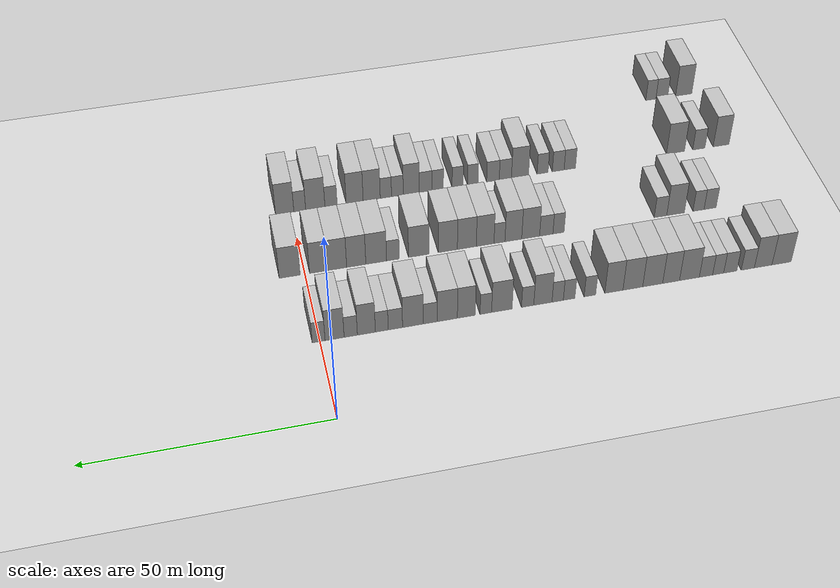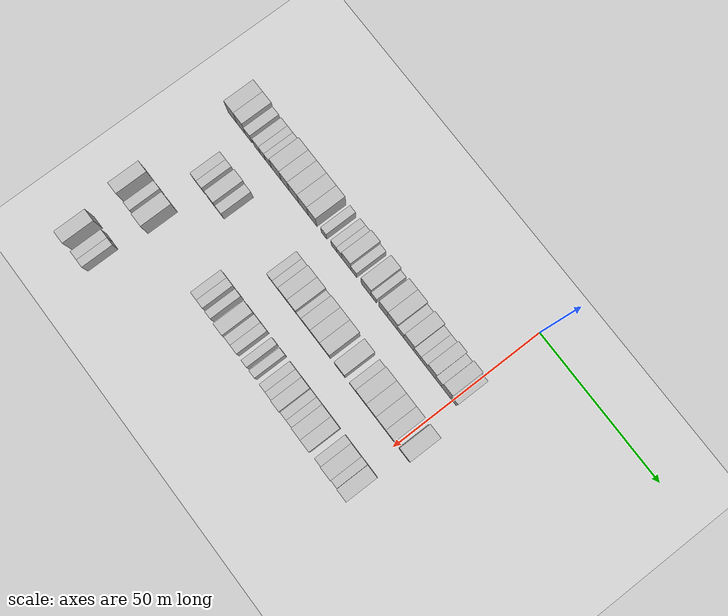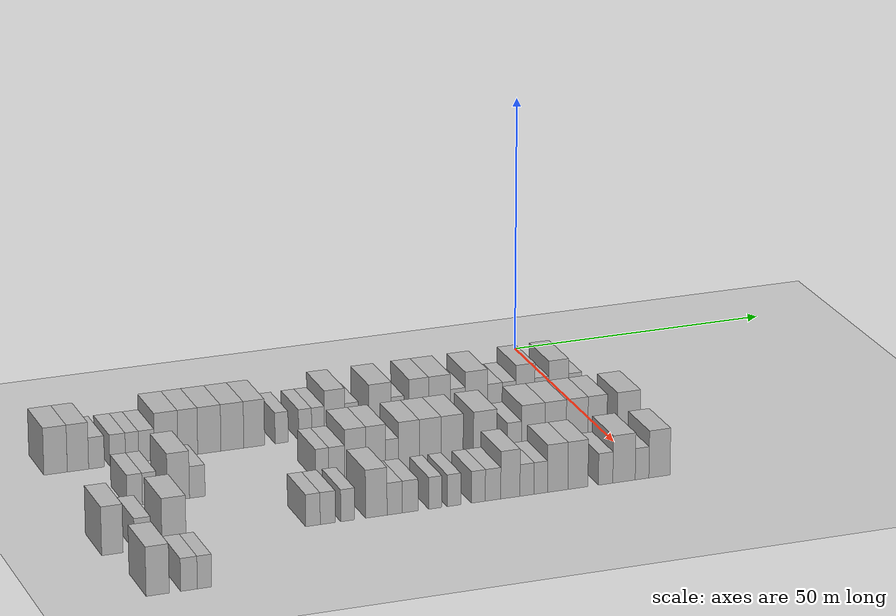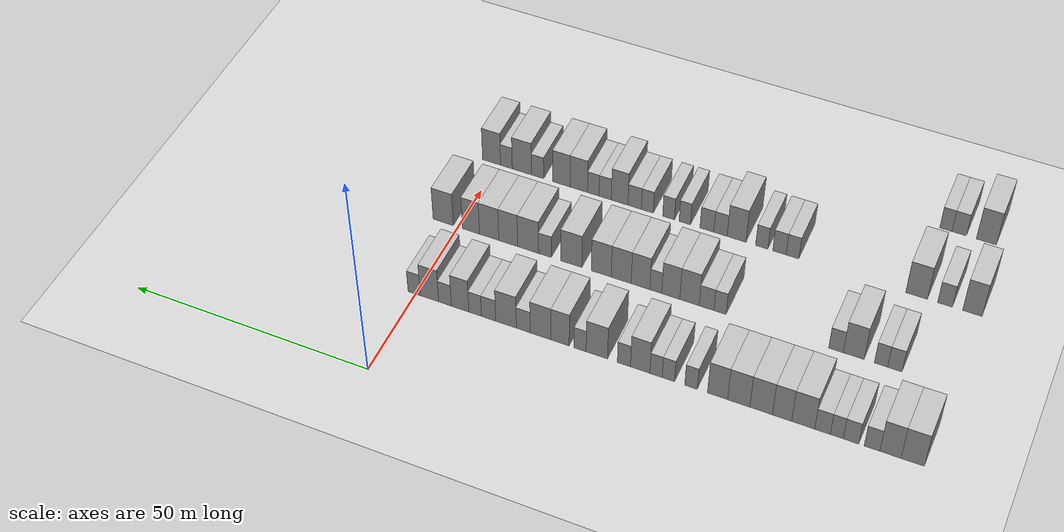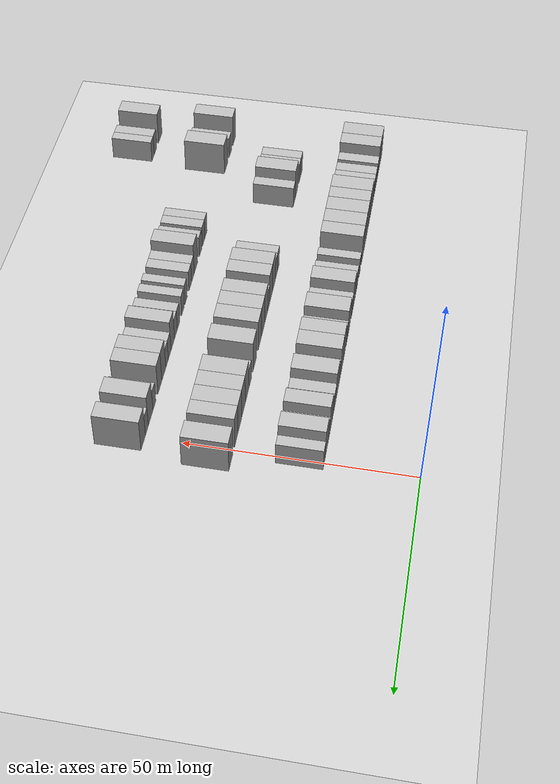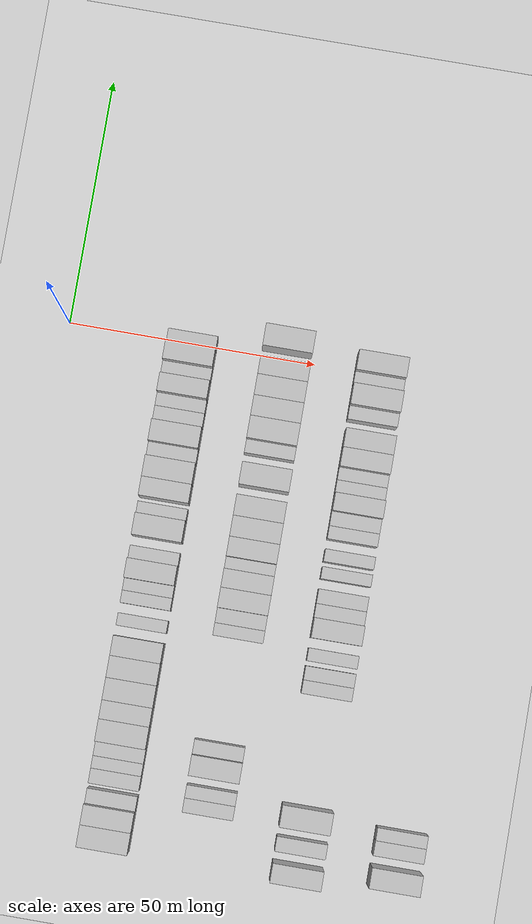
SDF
<sdf version="1.6">
 <world name="default">
  <include><name>ground_plane_1</name><uri>model://HANNAS_ground_plane</uri></include>
  <model name="building_61">
   <static>1</static>
   <pose>25.0000 -99.0919 0 0.000000 0.000000 0.000000</pose>
   <link name="link">
    <pose>0 0 4.50 0 0 0</pose>
    <collision name="collision"><geometry><box><size>10.0000 4.3256 9.0000</size></box></geometry></collision>
    <visual name="visual">
     <cast_shadows>0</cast_shadows>
     <geometry><box><size>10.0000 4.3256 9.0000</size></box></geometry>
     <material>
      <script>
       <uri>model://HANNAS_wall/materials/scripts</uri>
       <uri>model://HANNAS_wall/materials/textures</uri>
       <name>vrc/HANNAS_wall</name>
      </script>
     </material>
    </visual>
   </link>
  </model>
  <model name="building_62">
   <static>1</static>
   <pose>25.0000 -94.9548 0 0.000000 0.000000 0.000000</pose>
   <link name="link">
    <pose>0 0 4.50 0 0 0</pose>
    <collision name="collision"><geometry><box><size>10.0000 3.9485 9.0000</size></box></geometry></collision>
    <visual name="visual">
     <cast_shadows>0</cast_shadows>
     <geometry><box><size>10.0000 3.9485 9.0000</size></box></geometry>
     <material>
      <script>
       <uri>model://HANNAS_wall/materials/scripts</uri>
       <uri>model://HANNAS_wall/materials/textures</uri>
       <name>vrc/HANNAS_wall</name>
      </script>
     </material>
    </visual>
   </link>
  </model>
  <model name="building_63">
   <static>1</static>
   <pose>25.0000 -91.5138 0 0.000000 0.000000 0.000000</pose>
   <link name="link">
    <pose>0 0 3.00 0 0 0</pose>
    <collision name="collision"><geometry><box><size>10.0000 2.9335 6.0000</size></box></geometry></collision>
    <visual name="visual">
     <cast_shadows>0</cast_shadows>
     <geometry><box><size>10.0000 2.9335 6.0000</size></box></geometry>
     <material>
      <script>
       <uri>model://HANNAS_wall/materials/scripts</uri>
       <uri>model://HANNAS_wall/materials/textures</uri>
       <name>vrc/HANNAS_wall</name>
      </script>
     </material>
    </visual>
   </link>
  </model>
  <model name="building_64">
   <static>1</static>
   <pose>25.0000 -87.5771 0 0.000000 0.000000 0.000000</pose>
   <link name="link">
    <pose>0 0 3.00 0 0 0</pose>
    <collision name="collision"><geometry><box><size>10.0000 2.9399 6.0000</size></box></geometry></collision>
    <visual name="visual">
     <cast_shadows>0</cast_shadows>
     <geometry><box><size>10.0000 2.9399 6.0000</size></box></geometry>
     <material>
      <script>
       <uri>model://HANNAS_wall/materials/scripts</uri>
       <uri>model://HANNAS_wall/materials/textures</uri>
       <name>vrc/HANNAS_wall</name>
      </script>
     </material>
    </visual>
   </link>
  </model>
  <model name="building_65">
   <static>1</static>
   <pose>25.0000 -84.8800 0 0.000000 0.000000 0.000000</pose>
   <link name="link">
    <pose>0 0 3.00 0 0 0</pose>
    <collision name="collision"><geometry><box><size>10.0000 2.4543 6.0000</size></box></geometry></collision>
    <visual name="visual">
     <cast_shadows>0</cast_shadows>
     <geometry><box><size>10.0000 2.4543 6.0000</size></box></geometry>
     <material>
      <script>
       <uri>model://HANNAS_wall/materials/scripts</uri>
       <uri>model://HANNAS_wall/materials/textures</uri>
       <name>vrc/HANNAS_wall</name>
      </script>
     </material>
    </visual>
   </link>
  </model>
  <model name="building_66">
   <static>1</static>
   <pose>25.0000 -82.1757 0 0.000000 0.000000 0.000000</pose>
   <link name="link">
    <pose>0 0 3.00 0 0 0</pose>
    <collision name="collision"><geometry><box><size>10.0000 2.9542 6.0000</size></box></geometry></collision>
    <visual name="visual">
     <cast_shadows>0</cast_shadows>
     <geometry><box><size>10.0000 2.9542 6.0000</size></box></geometry>
     <material>
      <script>
       <uri>model://HANNAS_wall/materials/scripts</uri>
       <uri>model://HANNAS_wall/materials/textures</uri>
       <name>vrc/HANNAS_wall</name>
      </script>
     </material>
    </visual>
   </link>
  </model>
  <model name="building_67">
   <static>1</static>
   <pose>25.0000 -78.5030 0 0.000000 0.000000 0.000000</pose>
   <link name="link">
    <pose>0 0 4.50 0 0 0</pose>
    <collision name="collision"><geometry><box><size>10.0000 4.3913 9.0000</size></box></geometry></collision>
    <visual name="visual">
     <cast_shadows>0</cast_shadows>
     <geometry><box><size>10.0000 4.3913 9.0000</size></box></geometry>
     <material>
      <script>
       <uri>model://HANNAS_wall/materials/scripts</uri>
       <uri>model://HANNAS_wall/materials/textures</uri>
       <name>vrc/HANNAS_wall</name>
      </script>
     </material>
    </visual>
   </link>
  </model>
  <model name="building_68">
   <static>1</static>
   <pose>25.0000 -74.4544 0 0.000000 0.000000 0.000000</pose>
   <link name="link">
    <pose>0 0 4.50 0 0 0</pose>
    <collision name="collision"><geometry><box><size>10.0000 3.7057 9.0000</size></box></geometry></collision>
    <visual name="visual">
     <cast_shadows>0</cast_shadows>
     <geometry><box><size>10.0000 3.7057 9.0000</size></box></geometry>
     <material>
      <script>
       <uri>model://HANNAS_wall/materials/scripts</uri>
       <uri>model://HANNAS_wall/materials/textures</uri>
       <name>vrc/HANNAS_wall</name>
      </script>
     </material>
    </visual>
   </link>
  </model>
  <model name="building_69">
   <static>1</static>
   <pose>25.0000 -70.4099 0 0.000000 0.000000 0.000000</pose>
   <link name="link">
    <pose>0 0 4.50 0 0 0</pose>
    <collision name="collision"><geometry><box><size>10.0000 4.3834 9.0000</size></box></geometry></collision>
    <visual name="visual">
     <cast_shadows>0</cast_shadows>
     <geometry><box><size>10.0000 4.3834 9.0000</size></box></geometry>
     <material>
      <script>
       <uri>model://HANNAS_wall/materials/scripts</uri>
       <uri>model://HANNAS_wall/materials/textures</uri>
       <name>vrc/HANNAS_wall</name>
      </script>
     </material>
    </visual>
   </link>
  </model>
  <model name="building_70">
   <static>1</static>
   <pose>25.0000 -66.0621 0 0.000000 0.000000 0.000000</pose>
   <link name="link">
    <pose>0 0 4.50 0 0 0</pose>
    <collision name="collision"><geometry><box><size>10.0000 4.3121 9.0000</size></box></geometry></collision>
    <visual name="visual">
     <cast_shadows>0</cast_shadows>
     <geometry><box><size>10.0000 4.3121 9.0000</size></box></geometry>
     <material>
      <script>
       <uri>model://HANNAS_wall/materials/scripts</uri>
       <uri>model://HANNAS_wall/materials/textures</uri>
       <name>vrc/HANNAS_wall</name>
      </script>
     </material>
    </visual>
   </link>
  </model>
  <model name="building_71">
   <static>1</static>
   <pose>25.0000 -61.9349 0 0.000000 0.000000 0.000000</pose>
   <link name="link">
    <pose>0 0 4.50 0 0 0</pose>
    <collision name="collision"><geometry><box><size>10.0000 3.9423 9.0000</size></box></geometry></collision>
    <visual name="visual">
     <cast_shadows>0</cast_shadows>
     <geometry><box><size>10.0000 3.9423 9.0000</size></box></geometry>
     <material>
      <script>
       <uri>model://HANNAS_wall/materials/scripts</uri>
       <uri>model://HANNAS_wall/materials/textures</uri>
       <name>vrc/HANNAS_wall</name>
      </script>
     </material>
    </visual>
   </link>
  </model>
  <model name="building_72">
   <static>1</static>
   <pose>25.0000 -56.7172 0 0.000000 0.000000 0.000000</pose>
   <link name="link">
    <pose>0 0 3.00 0 0 0</pose>
    <collision name="collision"><geometry><box><size>10.0000 2.4931 6.0000</size></box></geometry></collision>
    <visual name="visual">
     <cast_shadows>0</cast_shadows>
     <geometry><box><size>10.0000 2.4931 6.0000</size></box></geometry>
     <material>
      <script>
       <uri>model://HANNAS_wall/materials/scripts</uri>
       <uri>model://HANNAS_wall/materials/textures</uri>
       <name>vrc/HANNAS_wall</name>
      </script>
     </material>
    </visual>
   </link>
  </model>
  <model name="building_73">
   <static>1</static>
   <pose>25.0000 -52.2281 0 0.000000 0.000000 0.000000</pose>
   <link name="link">
    <pose>0 0 3.00 0 0 0</pose>
    <collision name="collision"><geometry><box><size>10.0000 2.4852 6.0000</size></box></geometry></collision>
    <visual name="visual">
     <cast_shadows>0</cast_shadows>
     <geometry><box><size>10.0000 2.4852 6.0000</size></box></geometry>
     <material>
      <script>
       <uri>model://HANNAS_wall/materials/scripts</uri>
       <uri>model://HANNAS_wall/materials/textures</uri>
       <name>vrc/HANNAS_wall</name>
      </script>
     </material>
    </visual>
   </link>
  </model>
  <model name="building_74">
   <static>1</static>
   <pose>25.0000 -49.7633 0 0.000000 0.000000 0.000000</pose>
   <link name="link">
    <pose>0 0 3.00 0 0 0</pose>
    <collision name="collision"><geometry><box><size>10.0000 2.4444 6.0000</size></box></geometry></collision>
    <visual name="visual">
     <cast_shadows>0</cast_shadows>
     <geometry><box><size>10.0000 2.4444 6.0000</size></box></geometry>
     <material>
      <script>
       <uri>model://HANNAS_wall/materials/scripts</uri>
       <uri>model://HANNAS_wall/materials/textures</uri>
       <name>vrc/HANNAS_wall</name>
      </script>
     </material>
    </visual>
   </link>
  </model>
  <model name="building_75">
   <static>1</static>
   <pose>25.0000 -46.5911 0 0.000000 0.000000 0.000000</pose>
   <link name="link">
    <pose>0 0 4.50 0 0 0</pose>
    <collision name="collision"><geometry><box><size>10.0000 3.9000 9.0000</size></box></geometry></collision>
    <visual name="visual">
     <cast_shadows>0</cast_shadows>
     <geometry><box><size>10.0000 3.9000 9.0000</size></box></geometry>
     <material>
      <script>
       <uri>model://HANNAS_wall/materials/scripts</uri>
       <uri>model://HANNAS_wall/materials/textures</uri>
       <name>vrc/HANNAS_wall</name>
      </script>
     </material>
    </visual>
   </link>
  </model>
  <model name="building_76">
   <static>1</static>
   <pose>25.0000 -43.3283 0 0.000000 0.000000 0.000000</pose>
   <link name="link">
    <pose>0 0 3.00 0 0 0</pose>
    <collision name="collision"><geometry><box><size>10.0000 2.6255 6.0000</size></box></geometry></collision>
    <visual name="visual">
     <cast_shadows>0</cast_shadows>
     <geometry><box><size>10.0000 2.6255 6.0000</size></box></geometry>
     <material>
      <script>
       <uri>model://HANNAS_wall/materials/scripts</uri>
       <uri>model://HANNAS_wall/materials/textures</uri>
       <name>vrc/HANNAS_wall</name>
      </script>
     </material>
    </visual>
   </link>
  </model>
  <model name="building_77">
   <static>1</static>
   <pose>25.0000 -37.8371 0 0.000000 0.000000 0.000000</pose>
   <link name="link">
    <pose>0 0 4.50 0 0 0</pose>
    <collision name="collision"><geometry><box><size>10.0000 4.3570 9.0000</size></box></geometry></collision>
    <visual name="visual">
     <cast_shadows>0</cast_shadows>
     <geometry><box><size>10.0000 4.3570 9.0000</size></box></geometry>
     <material>
      <script>
       <uri>model://HANNAS_wall/materials/scripts</uri>
       <uri>model://HANNAS_wall/materials/textures</uri>
       <name>vrc/HANNAS_wall</name>
      </script>
     </material>
    </visual>
   </link>
  </model>
  <model name="building_78">
   <static>1</static>
   <pose>25.0000 -34.4365 0 0.000000 0.000000 0.000000</pose>
   <link name="link">
    <pose>0 0 3.00 0 0 0</pose>
    <collision name="collision"><geometry><box><size>10.0000 2.4443 6.0000</size></box></geometry></collision>
    <visual name="visual">
     <cast_shadows>0</cast_shadows>
     <geometry><box><size>10.0000 2.4443 6.0000</size></box></geometry>
     <material>
      <script>
       <uri>model://HANNAS_wall/materials/scripts</uri>
       <uri>model://HANNAS_wall/materials/textures</uri>
       <name>vrc/HANNAS_wall</name>
      </script>
     </material>
    </visual>
   </link>
  </model>
  <model name="building_79">
   <static>1</static>
   <pose>25.0000 -30.3261 0 0.000000 0.000000 0.000000</pose>
   <link name="link">
    <pose>0 0 4.50 0 0 0</pose>
    <collision name="collision"><geometry><box><size>10.0000 3.7765 9.0000</size></box></geometry></collision>
    <visual name="visual">
     <cast_shadows>0</cast_shadows>
     <geometry><box><size>10.0000 3.7765 9.0000</size></box></geometry>
     <material>
      <script>
       <uri>model://HANNAS_wall/materials/scripts</uri>
       <uri>model://HANNAS_wall/materials/textures</uri>
       <name>vrc/HANNAS_wall</name>
      </script>
     </material>
    </visual>
   </link>
  </model>
  <model name="building_80">
   <static>1</static>
   <pose>25.0000 -26.3080 0 0.000000 0.000000 0.000000</pose>
   <link name="link">
    <pose>0 0 4.50 0 0 0</pose>
    <collision name="collision"><geometry><box><size>10.0000 4.2597 9.0000</size></box></geometry></collision>
    <visual name="visual">
     <cast_shadows>0</cast_shadows>
     <geometry><box><size>10.0000 4.2597 9.0000</size></box></geometry>
     <material>
      <script>
       <uri>model://HANNAS_wall/materials/scripts</uri>
       <uri>model://HANNAS_wall/materials/textures</uri>
       <name>vrc/HANNAS_wall</name>
      </script>
     </material>
    </visual>
   </link>
  </model>
  <model name="building_81">
   <static>1</static>
   <pose>25.0000 -22.7235 0 0.000000 0.000000 0.000000</pose>
   <link name="link">
    <pose>0 0 3.00 0 0 0</pose>
    <collision name="collision"><geometry><box><size>10.0000 2.9092 6.0000</size></box></geometry></collision>
    <visual name="visual">
     <cast_shadows>0</cast_shadows>
     <geometry><box><size>10.0000 2.9092 6.0000</size></box></geometry>
     <material>
      <script>
       <uri>model://HANNAS_wall/materials/scripts</uri>
       <uri>model://HANNAS_wall/materials/textures</uri>
       <name>vrc/HANNAS_wall</name>
      </script>
     </material>
    </visual>
   </link>
  </model>
  <model name="building_82">
   <static>1</static>
   <pose>25.0000 -19.1239 0 0.000000 0.000000 0.000000</pose>
   <link name="link">
    <pose>0 0 4.50 0 0 0</pose>
    <collision name="collision"><geometry><box><size>10.0000 4.2902 9.0000</size></box></geometry></collision>
    <visual name="visual">
     <cast_shadows>0</cast_shadows>
     <geometry><box><size>10.0000 4.2902 9.0000</size></box></geometry>
     <material>
      <script>
       <uri>model://HANNAS_wall/materials/scripts</uri>
       <uri>model://HANNAS_wall/materials/textures</uri>
       <name>vrc/HANNAS_wall</name>
      </script>
     </material>
    </visual>
   </link>
  </model>
  <model name="building_83">
   <static>1</static>
   <pose>25.0000 -15.4917 0 0.000000 0.000000 0.000000</pose>
   <link name="link">
    <pose>0 0 3.00 0 0 0</pose>
    <collision name="collision"><geometry><box><size>10.0000 2.9742 6.0000</size></box></geometry></collision>
    <visual name="visual">
     <cast_shadows>0</cast_shadows>
     <geometry><box><size>10.0000 2.9742 6.0000</size></box></geometry>
     <material>
      <script>
       <uri>model://HANNAS_wall/materials/scripts</uri>
       <uri>model://HANNAS_wall/materials/textures</uri>
       <name>vrc/HANNAS_wall</name>
      </script>
     </material>
    </visual>
   </link>
  </model>
  <model name="building_84">
   <static>1</static>
   <pose>25.0000 -12.6764 0 0.000000 0.000000 0.000000</pose>
   <link name="link">
    <pose>0 0 3.00 0 0 0</pose>
    <collision name="collision"><geometry><box><size>10.0000 2.6565 6.0000</size></box></geometry></collision>
    <visual name="visual">
     <cast_shadows>0</cast_shadows>
     <geometry><box><size>10.0000 2.6565 6.0000</size></box></geometry>
     <material>
      <script>
       <uri>model://HANNAS_wall/materials/scripts</uri>
       <uri>model://HANNAS_wall/materials/textures</uri>
       <name>vrc/HANNAS_wall</name>
      </script>
     </material>
    </visual>
   </link>
  </model>
  <model name="building_85">
   <static>1</static>
   <pose>25.0000 -9.4962 0 0.000000 0.000000 0.000000</pose>
   <link name="link">
    <pose>0 0 4.50 0 0 0</pose>
    <collision name="collision"><geometry><box><size>10.0000 3.7039 9.0000</size></box></geometry></collision>
    <visual name="visual">
     <cast_shadows>0</cast_shadows>
     <geometry><box><size>10.0000 3.7039 9.0000</size></box></geometry>
     <material>
      <script>
       <uri>model://HANNAS_wall/materials/scripts</uri>
       <uri>model://HANNAS_wall/materials/textures</uri>
       <name>vrc/HANNAS_wall</name>
      </script>
     </material>
    </visual>
   </link>
  </model>
  <model name="building_86">
   <static>1</static>
   <pose>25.0000 -6.2810 0 0.000000 0.000000 0.000000</pose>
   <link name="link">
    <pose>0 0 3.00 0 0 0</pose>
    <collision name="collision"><geometry><box><size>10.0000 2.7266 6.0000</size></box></geometry></collision>
    <visual name="visual">
     <cast_shadows>0</cast_shadows>
     <geometry><box><size>10.0000 2.7266 6.0000</size></box></geometry>
     <material>
      <script>
       <uri>model://HANNAS_wall/materials/scripts</uri>
       <uri>model://HANNAS_wall/materials/textures</uri>
       <name>vrc/HANNAS_wall</name>
      </script>
     </material>
    </visual>
   </link>
  </model>
  <model name="building_87">
   <static>1</static>
   <pose>25.0000 -2.9673 0 0.000000 0.000000 0.000000</pose>
   <link name="link">
    <pose>0 0 4.50 0 0 0</pose>
    <collision name="collision"><geometry><box><size>10.0000 3.9007 9.0000</size></box></geometry></collision>
    <visual name="visual">
     <cast_shadows>0</cast_shadows>
     <geometry><box><size>10.0000 3.9007 9.0000</size></box></geometry>
     <material>
      <script>
       <uri>model://HANNAS_wall/materials/scripts</uri>
       <uri>model://HANNAS_wall/materials/textures</uri>
       <name>vrc/HANNAS_wall</name>
      </script>
     </material>
    </visual>
   </link>
  </model>
  <model name="building_88">
   <static>1</static>
   <pose>25.0000 0.2975 0 0.000000 0.000000 0.000000</pose>
   <link name="link">
    <pose>0 0 3.00 0 0 0</pose>
    <collision name="collision"><geometry><box><size>10.0000 2.6289 6.0000</size></box></geometry></collision>
    <visual name="visual">
     <cast_shadows>0</cast_shadows>
     <geometry><box><size>10.0000 2.6289 6.0000</size></box></geometry>
     <material>
      <script>
       <uri>model://HANNAS_wall/materials/scripts</uri>
       <uri>model://HANNAS_wall/materials/textures</uri>
       <name>vrc/HANNAS_wall</name>
      </script>
     </material>
    </visual>
   </link>
  </model>
  <model name="building_220">
   <static>1</static>
   <pose>44.0000 -90.0922 0 0.000000 0.000000 0.000000</pose>
   <link name="link">
    <pose>0 0 3.00 0 0 0</pose>
    <collision name="collision"><geometry><box><size>10.0000 2.7992 6.0000</size></box></geometry></collision>
    <visual name="visual">
     <cast_shadows>0</cast_shadows>
     <geometry><box><size>10.0000 2.7992 6.0000</size></box></geometry>
     <material>
      <script>
       <uri>model://HANNAS_wall/materials/scripts</uri>
       <uri>model://HANNAS_wall/materials/textures</uri>
       <name>vrc/HANNAS_wall</name>
      </script>
     </material>
    </visual>
   </link>
  </model>
  <model name="building_221">
   <static>1</static>
   <pose>44.0000 -87.4072 0 0.000000 0.000000 0.000000</pose>
   <link name="link">
    <pose>0 0 3.00 0 0 0</pose>
    <collision name="collision"><geometry><box><size>10.0000 2.5708 6.0000</size></box></geometry></collision>
    <visual name="visual">
     <cast_shadows>0</cast_shadows>
     <geometry><box><size>10.0000 2.5708 6.0000</size></box></geometry>
     <material>
      <script>
       <uri>model://HANNAS_wall/materials/scripts</uri>
       <uri>model://HANNAS_wall/materials/textures</uri>
       <name>vrc/HANNAS_wall</name>
      </script>
     </material>
    </visual>
   </link>
  </model>
  <model name="building_222">
   <static>1</static>
   <pose>44.0000 -82.0931 0 0.000000 0.000000 0.000000</pose>
   <link name="link">
    <pose>0 0 4.50 0 0 0</pose>
    <collision name="collision"><geometry><box><size>10.0000 4.0575 9.0000</size></box></geometry></collision>
    <visual name="visual">
     <cast_shadows>0</cast_shadows>
     <geometry><box><size>10.0000 4.0575 9.0000</size></box></geometry>
     <material>
      <script>
       <uri>model://HANNAS_wall/materials/scripts</uri>
       <uri>model://HANNAS_wall/materials/textures</uri>
       <name>vrc/HANNAS_wall</name>
      </script>
     </material>
    </visual>
   </link>
  </model>
  <model name="building_223">
   <static>1</static>
   <pose>44.0000 -78.6224 0 0.000000 0.000000 0.000000</pose>
   <link name="link">
    <pose>0 0 3.00 0 0 0</pose>
    <collision name="collision"><geometry><box><size>10.0000 2.8838 6.0000</size></box></geometry></collision>
    <visual name="visual">
     <cast_shadows>0</cast_shadows>
     <geometry><box><size>10.0000 2.8838 6.0000</size></box></geometry>
     <material>
      <script>
       <uri>model://HANNAS_wall/materials/scripts</uri>
       <uri>model://HANNAS_wall/materials/textures</uri>
       <name>vrc/HANNAS_wall</name>
      </script>
     </material>
    </visual>
   </link>
  </model>
  <model name="building_224">
   <static>1</static>
   <pose>44.0000 -55.4312 0 0.000000 0.000000 0.000000</pose>
   <link name="link">
    <pose>0 0 3.00 0 0 0</pose>
    <collision name="collision"><geometry><box><size>10.0000 2.4996 6.0000</size></box></geometry></collision>
    <visual name="visual">
     <cast_shadows>0</cast_shadows>
     <geometry><box><size>10.0000 2.4996 6.0000</size></box></geometry>
     <material>
      <script>
       <uri>model://HANNAS_wall/materials/scripts</uri>
       <uri>model://HANNAS_wall/materials/textures</uri>
       <name>vrc/HANNAS_wall</name>
      </script>
     </material>
    </visual>
   </link>
  </model>
  <model name="building_225">
   <static>1</static>
   <pose>44.0000 -52.6894 0 0.000000 0.000000 0.000000</pose>
   <link name="link">
    <pose>0 0 3.00 0 0 0</pose>
    <collision name="collision"><geometry><box><size>10.0000 2.9840 6.0000</size></box></geometry></collision>
    <visual name="visual">
     <cast_shadows>0</cast_shadows>
     <geometry><box><size>10.0000 2.9840 6.0000</size></box></geometry>
     <material>
      <script>
       <uri>model://HANNAS_wall/materials/scripts</uri>
       <uri>model://HANNAS_wall/materials/textures</uri>
       <name>vrc/HANNAS_wall</name>
      </script>
     </material>
    </visual>
   </link>
  </model>
  <model name="building_226">
   <static>1</static>
   <pose>44.0000 -49.1990 0 0.000000 0.000000 0.000000</pose>
   <link name="link">
    <pose>0 0 4.50 0 0 0</pose>
    <collision name="collision"><geometry><box><size>10.0000 3.9967 9.0000</size></box></geometry></collision>
    <visual name="visual">
     <cast_shadows>0</cast_shadows>
     <geometry><box><size>10.0000 3.9967 9.0000</size></box></geometry>
     <material>
      <script>
       <uri>model://HANNAS_wall/materials/scripts</uri>
       <uri>model://HANNAS_wall/materials/textures</uri>
       <name>vrc/HANNAS_wall</name>
      </script>
     </material>
    </visual>
   </link>
  </model>
  <model name="building_227">
   <static>1</static>
   <pose>44.0000 -45.3298 0 0.000000 0.000000 0.000000</pose>
   <link name="link">
    <pose>0 0 4.50 0 0 0</pose>
    <collision name="collision"><geometry><box><size>10.0000 3.7417 9.0000</size></box></geometry></collision>
    <visual name="visual">
     <cast_shadows>0</cast_shadows>
     <geometry><box><size>10.0000 3.7417 9.0000</size></box></geometry>
     <material>
      <script>
       <uri>model://HANNAS_wall/materials/scripts</uri>
       <uri>model://HANNAS_wall/materials/textures</uri>
       <name>vrc/HANNAS_wall</name>
      </script>
     </material>
    </visual>
   </link>
  </model>
  <model name="building_228">
   <static>1</static>
   <pose>44.0000 -42.2456 0 0.000000 0.000000 0.000000</pose>
   <link name="link">
    <pose>0 0 3.00 0 0 0</pose>
    <collision name="collision"><geometry><box><size>10.0000 2.4268 6.0000</size></box></geometry></collision>
    <visual name="visual">
     <cast_shadows>0</cast_shadows>
     <geometry><box><size>10.0000 2.4268 6.0000</size></box></geometry>
     <material>
      <script>
       <uri>model://HANNAS_wall/materials/scripts</uri>
       <uri>model://HANNAS_wall/materials/textures</uri>
       <name>vrc/HANNAS_wall</name>
      </script>
     </material>
    </visual>
   </link>
  </model>
  <model name="building_229">
   <static>1</static>
   <pose>44.0000 -39.0717 0 0.000000 0.000000 0.000000</pose>
   <link name="link">
    <pose>0 0 4.50 0 0 0</pose>
    <collision name="collision"><geometry><box><size>10.0000 3.9209 9.0000</size></box></geometry></collision>
    <visual name="visual">
     <cast_shadows>0</cast_shadows>
     <geometry><box><size>10.0000 3.9209 9.0000</size></box></geometry>
     <material>
      <script>
       <uri>model://HANNAS_wall/materials/scripts</uri>
       <uri>model://HANNAS_wall/materials/textures</uri>
       <name>vrc/HANNAS_wall</name>
      </script>
     </material>
    </visual>
   </link>
  </model>
  <model name="building_230">
   <static>1</static>
   <pose>44.0000 -35.0303 0 0.000000 0.000000 0.000000</pose>
   <link name="link">
    <pose>0 0 4.50 0 0 0</pose>
    <collision name="collision"><geometry><box><size>10.0000 4.1619 9.0000</size></box></geometry></collision>
    <visual name="visual">
     <cast_shadows>0</cast_shadows>
     <geometry><box><size>10.0000 4.1619 9.0000</size></box></geometry>
     <material>
      <script>
       <uri>model://HANNAS_wall/materials/scripts</uri>
       <uri>model://HANNAS_wall/materials/textures</uri>
       <name>vrc/HANNAS_wall</name>
      </script>
     </material>
    </visual>
   </link>
  </model>
  <model name="building_231">
   <static>1</static>
   <pose>44.0000 -30.8508 0 0.000000 0.000000 0.000000</pose>
   <link name="link">
    <pose>0 0 4.50 0 0 0</pose>
    <collision name="collision"><geometry><box><size>10.0000 4.1972 9.0000</size></box></geometry></collision>
    <visual name="visual">
     <cast_shadows>0</cast_shadows>
     <geometry><box><size>10.0000 4.1972 9.0000</size></box></geometry>
     <material>
      <script>
       <uri>model://HANNAS_wall/materials/scripts</uri>
       <uri>model://HANNAS_wall/materials/textures</uri>
       <name>vrc/HANNAS_wall</name>
      </script>
     </material>
    </visual>
   </link>
  </model>
  <model name="building_232">
   <static>1</static>
   <pose>44.0000 -24.5054 0 0.000000 0.000000 0.000000</pose>
   <link name="link">
    <pose>0 0 4.50 0 0 0</pose>
    <collision name="collision"><geometry><box><size>10.0000 4.4937 9.0000</size></box></geometry></collision>
    <visual name="visual">
     <cast_shadows>0</cast_shadows>
     <geometry><box><size>10.0000 4.4937 9.0000</size></box></geometry>
     <material>
      <script>
       <uri>model://HANNAS_wall/materials/scripts</uri>
       <uri>model://HANNAS_wall/materials/textures</uri>
       <name>vrc/HANNAS_wall</name>
      </script>
     </material>
    </visual>
   </link>
  </model>
  <model name="building_233">
   <static>1</static>
   <pose>44.0000 -18.8831 0 0.000000 0.000000 0.000000</pose>
   <link name="link">
    <pose>0 0 3.00 0 0 0</pose>
    <collision name="collision"><geometry><box><size>10.0000 2.7508 6.0000</size></box></geometry></collision>
    <visual name="visual">
     <cast_shadows>0</cast_shadows>
     <geometry><box><size>10.0000 2.7508 6.0000</size></box></geometry>
     <material>
      <script>
       <uri>model://HANNAS_wall/materials/scripts</uri>
       <uri>model://HANNAS_wall/materials/textures</uri>
       <name>vrc/HANNAS_wall</name>
      </script>
     </material>
    </visual>
   </link>
  </model>
  <model name="building_234">
   <static>1</static>
   <pose>44.0000 -15.2633 0 0.000000 0.000000 0.000000</pose>
   <link name="link">
    <pose>0 0 4.50 0 0 0</pose>
    <collision name="collision"><geometry><box><size>10.0000 4.4888 9.0000</size></box></geometry></collision>
    <visual name="visual">
     <cast_shadows>0</cast_shadows>
     <geometry><box><size>10.0000 4.4888 9.0000</size></box></geometry>
     <material>
      <script>
       <uri>model://HANNAS_wall/materials/scripts</uri>
       <uri>model://HANNAS_wall/materials/textures</uri>
       <name>vrc/HANNAS_wall</name>
      </script>
     </material>
    </visual>
   </link>
  </model>
  <model name="building_235">
   <static>1</static>
   <pose>44.0000 -10.9596 0 0.000000 0.000000 0.000000</pose>
   <link name="link">
    <pose>0 0 4.50 0 0 0</pose>
    <collision name="collision"><geometry><box><size>10.0000 4.1185 9.0000</size></box></geometry></collision>
    <visual name="visual">
     <cast_shadows>0</cast_shadows>
     <geometry><box><size>10.0000 4.1185 9.0000</size></box></geometry>
     <material>
      <script>
       <uri>model://HANNAS_wall/materials/scripts</uri>
       <uri>model://HANNAS_wall/materials/textures</uri>
       <name>vrc/HANNAS_wall</name>
      </script>
     </material>
    </visual>
   </link>
  </model>
  <model name="building_236">
   <static>1</static>
   <pose>44.0000 -6.7970 0 0.000000 0.000000 0.000000</pose>
   <link name="link">
    <pose>0 0 4.50 0 0 0</pose>
    <collision name="collision"><geometry><box><size>10.0000 4.2067 9.0000</size></box></geometry></collision>
    <visual name="visual">
     <cast_shadows>0</cast_shadows>
     <geometry><box><size>10.0000 4.2067 9.0000</size></box></geometry>
     <material>
      <script>
       <uri>model://HANNAS_wall/materials/scripts</uri>
       <uri>model://HANNAS_wall/materials/textures</uri>
       <name>vrc/HANNAS_wall</name>
      </script>
     </material>
    </visual>
   </link>
  </model>
  <model name="building_237">
   <static>1</static>
   <pose>44.0000 -2.8311 0 0.000000 0.000000 0.000000</pose>
   <link name="link">
    <pose>0 0 4.50 0 0 0</pose>
    <collision name="collision"><geometry><box><size>10.0000 3.7250 9.0000</size></box></geometry></collision>
    <visual name="visual">
     <cast_shadows>0</cast_shadows>
     <geometry><box><size>10.0000 3.7250 9.0000</size></box></geometry>
     <material>
      <script>
       <uri>model://HANNAS_wall/materials/scripts</uri>
       <uri>model://HANNAS_wall/materials/textures</uri>
       <name>vrc/HANNAS_wall</name>
      </script>
     </material>
    </visual>
   </link>
  </model>
  <model name="building_238">
   <static>1</static>
   <pose>44.0000 3.2646 0 0.000000 0.000000 0.000000</pose>
   <link name="link">
    <pose>0 0 4.50 0 0 0</pose>
    <collision name="collision"><geometry><box><size>10.0000 4.4665 9.0000</size></box></geometry></collision>
    <visual name="visual">
     <cast_shadows>0</cast_shadows>
     <geometry><box><size>10.0000 4.4665 9.0000</size></box></geometry>
     <material>
      <script>
       <uri>model://HANNAS_wall/materials/scripts</uri>
       <uri>model://HANNAS_wall/materials/textures</uri>
       <name>vrc/HANNAS_wall</name>
      </script>
     </material>
    </visual>
   </link>
  </model>
  <model name="building_392">
   <static>1</static>
   <pose>63.0000 -99.7593 0 0.000000 0.000000 0.000000</pose>
   <link name="link">
    <pose>0 0 4.50 0 0 0</pose>
    <collision name="collision"><geometry><box><size>10.0000 3.8222 9.0000</size></box></geometry></collision>
    <visual name="visual">
     <cast_shadows>0</cast_shadows>
     <geometry><box><size>10.0000 3.8222 9.0000</size></box></geometry>
     <material>
      <script>
       <uri>model://HANNAS_wall/materials/scripts</uri>
       <uri>model://HANNAS_wall/materials/textures</uri>
       <name>vrc/HANNAS_wall</name>
      </script>
     </material>
    </visual>
   </link>
  </model>
  <model name="building_393">
   <static>1</static>
   <pose>63.0000 -94.3771 0 0.000000 0.000000 0.000000</pose>
   <link name="link">
    <pose>0 0 3.00 0 0 0</pose>
    <collision name="collision"><geometry><box><size>10.0000 2.9422 6.0000</size></box></geometry></collision>
    <visual name="visual">
     <cast_shadows>0</cast_shadows>
     <geometry><box><size>10.0000 2.9422 6.0000</size></box></geometry>
     <material>
      <script>
       <uri>model://HANNAS_wall/materials/scripts</uri>
       <uri>model://HANNAS_wall/materials/textures</uri>
       <name>vrc/HANNAS_wall</name>
      </script>
     </material>
    </visual>
   </link>
  </model>
  <model name="building_394">
   <static>1</static>
   <pose>63.0000 -88.7405 0 0.000000 0.000000 0.000000</pose>
   <link name="link">
    <pose>0 0 4.50 0 0 0</pose>
    <collision name="collision"><geometry><box><size>10.0000 4.3309 9.0000</size></box></geometry></collision>
    <visual name="visual">
     <cast_shadows>0</cast_shadows>
     <geometry><box><size>10.0000 4.3309 9.0000</size></box></geometry>
     <material>
      <script>
       <uri>model://HANNAS_wall/materials/scripts</uri>
       <uri>model://HANNAS_wall/materials/textures</uri>
       <name>vrc/HANNAS_wall</name>
      </script>
     </material>
    </visual>
   </link>
  </model>
  <model name="building_395">
   <static>1</static>
   <pose>63.0000 -63.5776 0 0.000000 0.000000 0.000000</pose>
   <link name="link">
    <pose>0 0 3.00 0 0 0</pose>
    <collision name="collision"><geometry><box><size>10.0000 2.6649 6.0000</size></box></geometry></collision>
    <visual name="visual">
     <cast_shadows>0</cast_shadows>
     <geometry><box><size>10.0000 2.6649 6.0000</size></box></geometry>
     <material>
      <script>
       <uri>model://HANNAS_wall/materials/scripts</uri>
       <uri>model://HANNAS_wall/materials/textures</uri>
       <name>vrc/HANNAS_wall</name>
      </script>
     </material>
    </visual>
   </link>
  </model>
  <model name="building_396">
   <static>1</static>
   <pose>63.0000 -60.8622 0 0.000000 0.000000 0.000000</pose>
   <link name="link">
    <pose>0 0 3.00 0 0 0</pose>
    <collision name="collision"><geometry><box><size>10.0000 2.7658 6.0000</size></box></geometry></collision>
    <visual name="visual">
     <cast_shadows>0</cast_shadows>
     <geometry><box><size>10.0000 2.7658 6.0000</size></box></geometry>
     <material>
      <script>
       <uri>model://HANNAS_wall/materials/scripts</uri>
       <uri>model://HANNAS_wall/materials/textures</uri>
       <name>vrc/HANNAS_wall</name>
      </script>
     </material>
    </visual>
   </link>
  </model>
  <model name="building_397">
   <static>1</static>
   <pose>63.0000 -57.1977 0 0.000000 0.000000 0.000000</pose>
   <link name="link">
    <pose>0 0 3.00 0 0 0</pose>
    <collision name="collision"><geometry><box><size>10.0000 2.5633 6.0000</size></box></geometry></collision>
    <visual name="visual">
     <cast_shadows>0</cast_shadows>
     <geometry><box><size>10.0000 2.5633 6.0000</size></box></geometry>
     <material>
      <script>
       <uri>model://HANNAS_wall/materials/scripts</uri>
       <uri>model://HANNAS_wall/materials/textures</uri>
       <name>vrc/HANNAS_wall</name>
      </script>
     </material>
    </visual>
   </link>
  </model>
  <model name="building_398">
   <static>1</static>
   <pose>63.0000 -51.9292 0 0.000000 0.000000 0.000000</pose>
   <link name="link">
    <pose>0 0 4.50 0 0 0</pose>
    <collision name="collision"><geometry><box><size>10.0000 3.9737 9.0000</size></box></geometry></collision>
    <visual name="visual">
     <cast_shadows>0</cast_shadows>
     <geometry><box><size>10.0000 3.9737 9.0000</size></box></geometry>
     <material>
      <script>
       <uri>model://HANNAS_wall/materials/scripts</uri>
       <uri>model://HANNAS_wall/materials/textures</uri>
       <name>vrc/HANNAS_wall</name>
      </script>
     </material>
    </visual>
   </link>
  </model>
  <model name="building_399">
   <static>1</static>
   <pose>63.0000 -48.5296 0 0.000000 0.000000 0.000000</pose>
   <link name="link">
    <pose>0 0 3.00 0 0 0</pose>
    <collision name="collision"><geometry><box><size>10.0000 2.8256 6.0000</size></box></geometry></collision>
    <visual name="visual">
     <cast_shadows>0</cast_shadows>
     <geometry><box><size>10.0000 2.8256 6.0000</size></box></geometry>
     <material>
      <script>
       <uri>model://HANNAS_wall/materials/scripts</uri>
       <uri>model://HANNAS_wall/materials/textures</uri>
       <name>vrc/HANNAS_wall</name>
      </script>
     </material>
    </visual>
   </link>
  </model>
  <model name="building_400">
   <static>1</static>
   <pose>63.0000 -45.6621 0 0.000000 0.000000 0.000000</pose>
   <link name="link">
    <pose>0 0 3.00 0 0 0</pose>
    <collision name="collision"><geometry><box><size>10.0000 2.9095 6.0000</size></box></geometry></collision>
    <visual name="visual">
     <cast_shadows>0</cast_shadows>
     <geometry><box><size>10.0000 2.9095 6.0000</size></box></geometry>
     <material>
      <script>
       <uri>model://HANNAS_wall/materials/scripts</uri>
       <uri>model://HANNAS_wall/materials/textures</uri>
       <name>vrc/HANNAS_wall</name>
      </script>
     </material>
    </visual>
   </link>
  </model>
  <model name="building_401">
   <static>1</static>
   <pose>63.0000 -40.9930 0 0.000000 0.000000 0.000000</pose>
   <link name="link">
    <pose>0 0 3.00 0 0 0</pose>
    <collision name="collision"><geometry><box><size>10.0000 2.4286 6.0000</size></box></geometry></collision>
    <visual name="visual">
     <cast_shadows>0</cast_shadows>
     <geometry><box><size>10.0000 2.4286 6.0000</size></box></geometry>
     <material>
      <script>
       <uri>model://HANNAS_wall/materials/scripts</uri>
       <uri>model://HANNAS_wall/materials/textures</uri>
       <name>vrc/HANNAS_wall</name>
      </script>
     </material>
    </visual>
   </link>
  </model>
  <model name="building_402">
   <static>1</static>
   <pose>63.0000 -37.5135 0 0.000000 0.000000 0.000000</pose>
   <link name="link">
    <pose>0 0 3.00 0 0 0</pose>
    <collision name="collision"><geometry><box><size>10.0000 2.5304 6.0000</size></box></geometry></collision>
    <visual name="visual">
     <cast_shadows>0</cast_shadows>
     <geometry><box><size>10.0000 2.5304 6.0000</size></box></geometry>
     <material>
      <script>
       <uri>model://HANNAS_wall/materials/scripts</uri>
       <uri>model://HANNAS_wall/materials/textures</uri>
       <name>vrc/HANNAS_wall</name>
      </script>
     </material>
    </visual>
   </link>
  </model>
  <model name="building_403">
   <static>1</static>
   <pose>63.0000 -32.9405 0 0.000000 0.000000 0.000000</pose>
   <link name="link">
    <pose>0 0 3.00 0 0 0</pose>
    <collision name="collision"><geometry><box><size>10.0000 2.6156 6.0000</size></box></geometry></collision>
    <visual name="visual">
     <cast_shadows>0</cast_shadows>
     <geometry><box><size>10.0000 2.6156 6.0000</size></box></geometry>
     <material>
      <script>
       <uri>model://HANNAS_wall/materials/scripts</uri>
       <uri>model://HANNAS_wall/materials/textures</uri>
       <name>vrc/HANNAS_wall</name>
      </script>
     </material>
    </visual>
   </link>
  </model>
  <model name="building_404">
   <static>1</static>
   <pose>63.0000 -30.1827 0 0.000000 0.000000 0.000000</pose>
   <link name="link">
    <pose>0 0 3.00 0 0 0</pose>
    <collision name="collision"><geometry><box><size>10.0000 2.9001 6.0000</size></box></geometry></collision>
    <visual name="visual">
     <cast_shadows>0</cast_shadows>
     <geometry><box><size>10.0000 2.9001 6.0000</size></box></geometry>
     <material>
      <script>
       <uri>model://HANNAS_wall/materials/scripts</uri>
       <uri>model://HANNAS_wall/materials/textures</uri>
       <name>vrc/HANNAS_wall</name>
      </script>
     </material>
    </visual>
   </link>
  </model>
  <model name="building_405">
   <static>1</static>
   <pose>63.0000 -26.9268 0 0.000000 0.000000 0.000000</pose>
   <link name="link">
    <pose>0 0 4.50 0 0 0</pose>
    <collision name="collision"><geometry><box><size>10.0000 3.6117 9.0000</size></box></geometry></collision>
    <visual name="visual">
     <cast_shadows>0</cast_shadows>
     <geometry><box><size>10.0000 3.6117 9.0000</size></box></geometry>
     <material>
      <script>
       <uri>model://HANNAS_wall/materials/scripts</uri>
       <uri>model://HANNAS_wall/materials/textures</uri>
       <name>vrc/HANNAS_wall</name>
      </script>
     </material>
    </visual>
   </link>
  </model>
  <model name="building_406">
   <static>1</static>
   <pose>63.0000 -23.7881 0 0.000000 0.000000 0.000000</pose>
   <link name="link">
    <pose>0 0 3.00 0 0 0</pose>
    <collision name="collision"><geometry><box><size>10.0000 2.6658 6.0000</size></box></geometry></collision>
    <visual name="visual">
     <cast_shadows>0</cast_shadows>
     <geometry><box><size>10.0000 2.6658 6.0000</size></box></geometry>
     <material>
      <script>
       <uri>model://HANNAS_wall/materials/scripts</uri>
       <uri>model://HANNAS_wall/materials/textures</uri>
       <name>vrc/HANNAS_wall</name>
      </script>
     </material>
    </visual>
   </link>
  </model>
  <model name="building_407">
   <static>1</static>
   <pose>63.0000 -21.1831 0 0.000000 0.000000 0.000000</pose>
   <link name="link">
    <pose>0 0 3.00 0 0 0</pose>
    <collision name="collision"><geometry><box><size>10.0000 2.5441 6.0000</size></box></geometry></collision>
    <visual name="visual">
     <cast_shadows>0</cast_shadows>
     <geometry><box><size>10.0000 2.5441 6.0000</size></box></geometry>
     <material>
      <script>
       <uri>model://HANNAS_wall/materials/scripts</uri>
       <uri>model://HANNAS_wall/materials/textures</uri>
       <name>vrc/HANNAS_wall</name>
      </script>
     </material>
    </visual>
   </link>
  </model>
  <model name="building_408">
   <static>1</static>
   <pose>63.0000 -17.9876 0 0.000000 0.000000 0.000000</pose>
   <link name="link">
    <pose>0 0 4.50 0 0 0</pose>
    <collision name="collision"><geometry><box><size>10.0000 3.8470 9.0000</size></box></geometry></collision>
    <visual name="visual">
     <cast_shadows>0</cast_shadows>
     <geometry><box><size>10.0000 3.8470 9.0000</size></box></geometry>
     <material>
      <script>
       <uri>model://HANNAS_wall/materials/scripts</uri>
       <uri>model://HANNAS_wall/materials/textures</uri>
       <name>vrc/HANNAS_wall</name>
      </script>
     </material>
    </visual>
   </link>
  </model>
  <model name="building_409">
   <static>1</static>
   <pose>63.0000 -14.1528 0 0.000000 0.000000 0.000000</pose>
   <link name="link">
    <pose>0 0 4.50 0 0 0</pose>
    <collision name="collision"><geometry><box><size>10.0000 3.8226 9.0000</size></box></geometry></collision>
    <visual name="visual">
     <cast_shadows>0</cast_shadows>
     <geometry><box><size>10.0000 3.8226 9.0000</size></box></geometry>
     <material>
      <script>
       <uri>model://HANNAS_wall/materials/scripts</uri>
       <uri>model://HANNAS_wall/materials/textures</uri>
       <name>vrc/HANNAS_wall</name>
      </script>
     </material>
    </visual>
   </link>
  </model>
  <model name="building_410">
   <static>1</static>
   <pose>63.0000 -8.8715 0 0.000000 0.000000 0.000000</pose>
   <link name="link">
    <pose>0 0 3.00 0 0 0</pose>
    <collision name="collision"><geometry><box><size>10.0000 2.7399 6.0000</size></box></geometry></collision>
    <visual name="visual">
     <cast_shadows>0</cast_shadows>
     <geometry><box><size>10.0000 2.7399 6.0000</size></box></geometry>
     <material>
      <script>
       <uri>model://HANNAS_wall/materials/scripts</uri>
       <uri>model://HANNAS_wall/materials/textures</uri>
       <name>vrc/HANNAS_wall</name>
      </script>
     </material>
    </visual>
   </link>
  </model>
  <model name="building_411">
   <static>1</static>
   <pose>63.0000 -5.3590 0 0.000000 0.000000 0.000000</pose>
   <link name="link">
    <pose>0 0 4.50 0 0 0</pose>
    <collision name="collision"><geometry><box><size>10.0000 4.2850 9.0000</size></box></geometry></collision>
    <visual name="visual">
     <cast_shadows>0</cast_shadows>
     <geometry><box><size>10.0000 4.2850 9.0000</size></box></geometry>
     <material>
      <script>
       <uri>model://HANNAS_wall/materials/scripts</uri>
       <uri>model://HANNAS_wall/materials/textures</uri>
       <name>vrc/HANNAS_wall</name>
      </script>
     </material>
    </visual>
   </link>
  </model>
  <model name="building_412">
   <static>1</static>
   <pose>63.0000 -1.9066 0 0.000000 0.000000 0.000000</pose>
   <link name="link">
    <pose>0 0 3.00 0 0 0</pose>
    <collision name="collision"><geometry><box><size>10.0000 2.6199 6.0000</size></box></geometry></collision>
    <visual name="visual">
     <cast_shadows>0</cast_shadows>
     <geometry><box><size>10.0000 2.6199 6.0000</size></box></geometry>
     <material>
      <script>
       <uri>model://HANNAS_wall/materials/scripts</uri>
       <uri>model://HANNAS_wall/materials/textures</uri>
       <name>vrc/HANNAS_wall</name>
      </script>
     </material>
    </visual>
   </link>
  </model>
  <model name="building_413">
   <static>1</static>
   <pose>63.0000 1.4347 0 0.000000 0.000000 0.000000</pose>
   <link name="link">
    <pose>0 0 4.50 0 0 0</pose>
    <collision name="collision"><geometry><box><size>10.0000 4.0626 9.0000</size></box></geometry></collision>
    <visual name="visual">
     <cast_shadows>0</cast_shadows>
     <geometry><box><size>10.0000 4.0626 9.0000</size></box></geometry>
     <material>
      <script>
       <uri>model://HANNAS_wall/materials/scripts</uri>
       <uri>model://HANNAS_wall/materials/textures</uri>
       <name>vrc/HANNAS_wall</name>
      </script>
     </material>
    </visual>
   </link>
  </model>
  <model name="building_562">
   <static>1</static>
   <pose>82.0000 -97.4596 0 0.000000 0.000000 0.000000</pose>
   <link name="link">
    <pose>0 0 4.50 0 0 0</pose>
    <collision name="collision"><geometry><box><size>10.0000 4.0586 9.0000</size></box></geometry></collision>
    <visual name="visual">
     <cast_shadows>0</cast_shadows>
     <geometry><box><size>10.0000 4.0586 9.0000</size></box></geometry>
     <material>
      <script>
       <uri>model://HANNAS_wall/materials/scripts</uri>
       <uri>model://HANNAS_wall/materials/textures</uri>
       <name>vrc/HANNAS_wall</name>
      </script>
     </material>
    </visual>
   </link>
  </model>
  <model name="building_563">
   <static>1</static>
   <pose>82.0000 -91.9659 0 0.000000 0.000000 0.000000</pose>
   <link name="link">
    <pose>0 0 3.00 0 0 0</pose>
    <collision name="collision"><geometry><box><size>10.0000 2.9287 6.0000</size></box></geometry></collision>
    <visual name="visual">
     <cast_shadows>0</cast_shadows>
     <geometry><box><size>10.0000 2.9287 6.0000</size></box></geometry>
     <material>
      <script>
       <uri>model://HANNAS_wall/materials/scripts</uri>
       <uri>model://HANNAS_wall/materials/textures</uri>
       <name>vrc/HANNAS_wall</name>
      </script>
     </material>
    </visual>
   </link>
  </model>
  <model name="building_564">
   <static>1</static>
   <pose>82.0000 -89.2395 0 0.000000 0.000000 0.000000</pose>
   <link name="link">
    <pose>0 0 3.00 0 0 0</pose>
    <collision name="collision"><geometry><box><size>10.0000 2.5241 6.0000</size></box></geometry></collision>
    <visual name="visual">
     <cast_shadows>0</cast_shadows>
     <geometry><box><size>10.0000 2.5241 6.0000</size></box></geometry>
     <material>
      <script>
       <uri>model://HANNAS_wall/materials/scripts</uri>
       <uri>model://HANNAS_wall/materials/textures</uri>
       <name>vrc/HANNAS_wall</name>
      </script>
     </material>
    </visual>
   </link>
  </model>
 </world>
</sdf>
